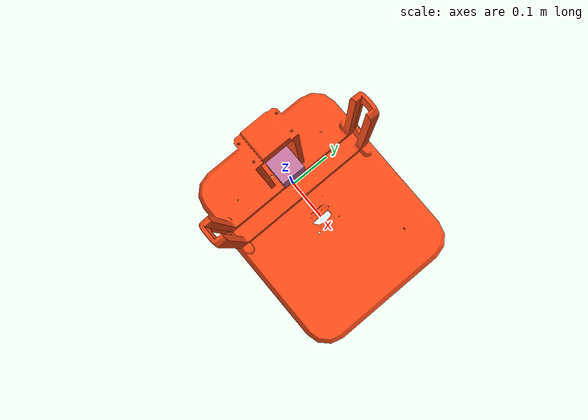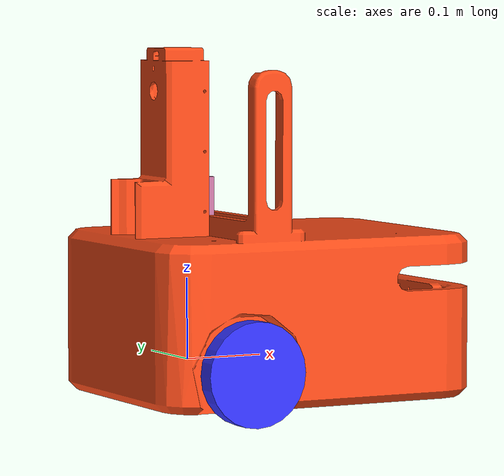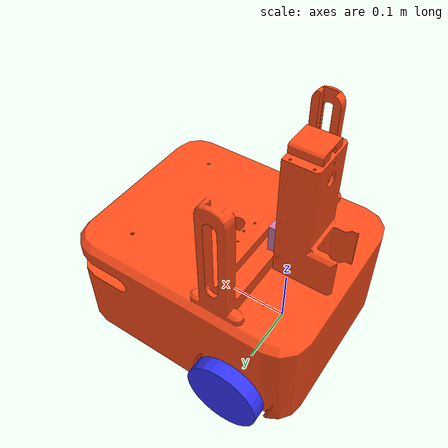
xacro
<?xml version="1.0"?>
<robot name="robot_zero" xmlns:xacro="http://www.ros.org/wiki/xacro" >

    <xacro:include filename="inertial_macros.xacro"/>

    <xacro:property name="chassis_length" value="0.420"/>
    <xacro:property name="chassis_width" value="0.340"/>
    <xacro:property name="chassis_height" value="0.20"/>
    <xacro:property name="chassis_mass" value="3.0"/>
    <xacro:property name="wheel_radius" value="0.0635"/>
    <xacro:property name="wheel_thickness" value="0.025"/>
    <xacro:property name="wheel_mass" value="0.05"/>
    <xacro:property name="wheel_offset_x" value="0.1"/>
    <xacro:property name="wheel_offset_y" value="0.1775"/>
    <xacro:property name="wheel_offset_z" value="0.046"/>
    <xacro:property name="caster_wheel_radius" value="0.02"/>
    <xacro:property name="caster_wheel_mass" value="0.01"/>
    <xacro:property name="caster_wheel_offset_x" value="0.360"/>
    <xacro:property name="caster_wheel_offset_z" value="${wheel_offset_z - wheel_radius + caster_wheel_radius}"/>

    <material name="white">
        <color rgba="1 1 1 1" />
    </material>

    <material name="orange">
        <color rgba="1 0.3 0.1 1"/>
    </material>

    <material name="blue">
        <color rgba="0.2 0.2 1 1"/>
    </material>

    <material name="black">
        <color rgba="0 0 0 1"/>
    </material>

    <material name="red">
        <color rgba="1 0 0 1"/>
    </material>

    <!-- BASE LINK -->

    <link name="base_link">

    </link>

    <!-- BASE_FOOTPRINT LINK -->

    <joint name="base_footprint_joint" type="fixed">
        <parent link="base_link"/>
        <child link="base_footprint"/>
        <origin xyz="-0.11 0 ${wheel_offset_z}" rpy="0 0 0"/>
    </joint>

    <link name="base_footprint">
    </link>

    <!-- CHASSIS LINK -->

    <joint name="chassis_joint" type="fixed">
        <parent link="base_link"/>
        <child link="chassis"/>
        <origin xyz="${-wheel_offset_x} 0 ${-wheel_offset_z}"/>
    </joint>

    <link name="chassis">
        <visual>
            <origin xyz="${chassis_length/2 + 0.006} 0 ${chassis_height/2}" rpy="0 0 1.5708"/>
            <geometry>
                 <mesh filename="file:///$(find robot_zero)/meshes/Chassis.stl" scale="1 1 1"/>
            </geometry>
            <material name="orange"/>
        </visual>
        <collision>
            <origin xyz="${chassis_length/2} 0 ${chassis_height/2}"/>
            <geometry>
                <box size="${chassis_length} ${chassis_width} ${chassis_height}"/>
            </geometry>
        </collision>
        <xacro:inertial_box mass="0.5" x="${chassis_length}" y="${chassis_width}" z="${chassis_height}">
            <origin xyz="${chassis_length/2} 0 ${chassis_height/2}" rpy="0 0 0"/>
        </xacro:inertial_box>
    </link>

    <gazebo reference="chassis">
        <material>Gazebo/Orange</material>
    </gazebo>

    <!-- LEFT WHEEL LINK -->

    <joint name="left_wheel_joint" type="continuous">
        <parent link="base_link"/>
        <child link="left_wheel"/>
        <origin xyz="0 ${wheel_offset_y} 0" rpy="-${pi/2} 0 0" />
        <axis xyz="0 0 1"/>
    </joint>

    <link name="left_wheel">
        <visual>
            <geometry>
                <cylinder radius="${wheel_radius}" length="${wheel_thickness}"/>
            </geometry>
            <material name="blue"/>
        </visual>
        <collision>
            <geometry>
                <sphere radius="${wheel_radius}"/>
            </geometry>
        </collision>
        <xacro:inertial_cylinder mass="${wheel_mass}" length="${wheel_thickness}" radius="${wheel_radius}">
            <origin xyz="0 0 0" rpy="0 0 0"/>
        </xacro:inertial_cylinder>
    </link>

    <gazebo reference="left_wheel">
        <material>Gazebo/Blue</material>
    </gazebo>

    <!-- RIGHT WHEEL LINK -->

    <joint name="right_wheel_joint" type="continuous">
        <parent link="base_link"/>
        <child link="right_wheel"/>
        <origin xyz="0 ${-wheel_offset_y} 0" rpy="${pi/2} 0 0" />
        <axis xyz="0 0 -1"/>
    </joint>

    <link name="right_wheel">
        <visual>
            <geometry>
                <cylinder radius="${wheel_radius}" length="${wheel_thickness}"/>
            </geometry>
            <material name="blue"/>
        </visual>
        <collision>
            <geometry>
                <sphere radius="${wheel_radius}"/>
            </geometry>
        </collision>
        <xacro:inertial_cylinder mass="${wheel_mass}" length="${wheel_thickness}" radius="${wheel_radius}">
            <origin xyz="0 0 0" rpy="0 0 0"/>
        </xacro:inertial_cylinder>
    </link>

    <gazebo reference="right_wheel">
        <material>Gazebo/Blue</material>
    </gazebo>

    <!-- CASTER WHEEL LINK -->

    <joint name="caster_wheel_joint" type="fixed">
        <parent link="chassis"/>
        <child link="caster_wheel"/>
        <origin xyz="${caster_wheel_offset_x} 0 ${caster_wheel_offset_z}"/>
    </joint>

    <link name="caster_wheel">
        <visual>
            <geometry>
                <sphere radius="${caster_wheel_radius}"/>
            </geometry>
            <material name="white"/>
        </visual>
        <collision>
            <geometry>
                <sphere radius="${caster_wheel_radius}"/>
            </geometry>
        </collision>
        <xacro:inertial_sphere mass="${caster_wheel_mass}" radius="${caster_wheel_radius}">
            <origin xyz="0 0 0" rpy="0 0 0"/>
        </xacro:inertial_sphere>
    </link>

    <gazebo reference="caster_wheel">
        <material>Gazebo/White</material>
        <mu1 value="0.001"/>
        <mu2 value="0.001"/>
    </gazebo>

    <!-- CAMERA LINK -->
    <joint name="camera_joint" type="fixed">
        <parent link="base_link"/>
        <child link="camera_link"/>
        <origin xyz="0 0 0.2" rpy="0 0 0"/>
    </joint>

    <link name="camera_link">
        <visual>
            <geometry>
            <box size="0.05 0.05 0.05"/>
            </geometry>
        </visual>

        <collision>
            <geometry>
            <box size="0.05 0.05 0.05"/>
            </geometry>
        </collision>

        <inertial>
            <mass value="0.1"/>
            <inertia ixx="0.0001" iyy="0.0001" izz="0.0001"
                    ixy="0" ixz="0" iyz="0"/>
        </inertial>
    </link>

    <gazebo reference="camera_link">
    <sensor type="depth" name="realsense">
        <update_rate>30.0</update_rate>

        <camera>
        <horizontal_fov>1.047</horizontal_fov>
        <image>
            <width>640</width>
            <height>480</height>
            <format>R8G8B8</format>
        </image>
        <clip>
            <near>0.1</near>
            <far>10.0</far>
        </clip>
        </camera>

        <plugin name="realsense_plugin" filename="libgazebo_ros_camera.so">
        <ros>
            <namespace>/</namespace>
        </ros>
        <camera_name>camera</camera_name>
        <frame_name>camera_link</frame_name>
        </plugin>

    </sensor>
    </gazebo>

    // GazeboSystem  ← hardware interface, convert cmd velocity to joint movements
    <ros2_control name="RobotZeroSystem" type="system">
        // Driver
        <hardware>
            <plugin>gazebo_ros2_control/GazeboSystem</plugin>
        </hardware>

        <joint name="left_wheel_joint">
            <command_interface name="velocity"/>
            <state_interface name="velocity"/>
            <state_interface name="position"/>
        </joint>

        <joint name="right_wheel_joint">
            <command_interface name="velocity"/>
            <state_interface name="velocity"/>
            <state_interface name="position"/>
        </joint>

    </ros2_control>

    // loads controller_manager + YAML
    <gazebo>
        <plugin name="gazebo_ros2_control" filename="libgazebo_ros2_control.so">
            <parameters>/root/ros2_ws/src/robot_zero/config/controllers.yaml</parameters>
        </plugin>
    </gazebo>

</robot>
